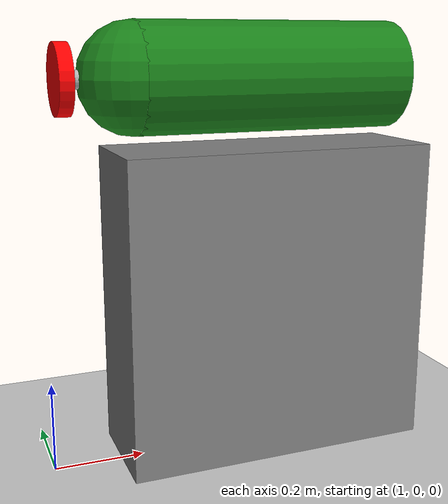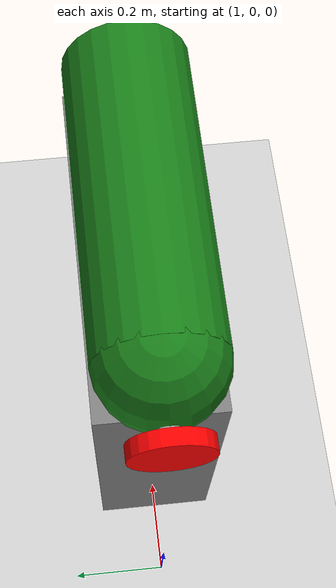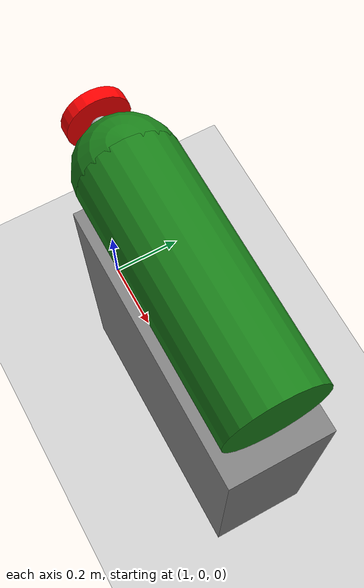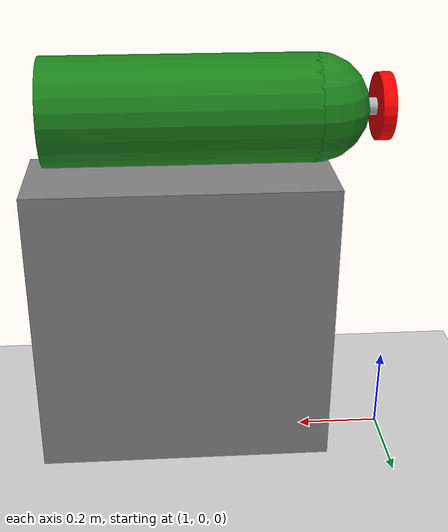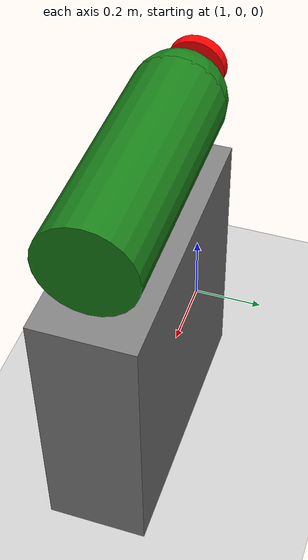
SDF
<?xml version="1.0" ?>

<sdf version="1.8">

  <world name="empty">

    <physics name="1ms" type="ignored">

      <max_step_size>0.001</max_step_size>

      <real_time_factor>1.0</real_time_factor>

    </physics>

    <plugin

      filename="gz-sim-physics-system"

      name="gz::sim::systems::Physics">

    </plugin>

    <plugin

      filename="gz-sim-user-commands-system"

      name="gz::sim::systems::UserCommands">

    </plugin>

    <plugin

      filename="gz-sim-scene-broadcaster-system"

      name="gz::sim::systems::SceneBroadcaster">

    </plugin>

    <light type="directional" name="sun">

      <cast_shadows>true</cast_shadows>

      <pose>0 0 10 0 0 0</pose>

      <diffuse>0.8 0.8 0.8 1</diffuse>

      <specular>0.2 0.2 0.2 1</specular>

      <attenuation>

        <range>1000</range>

        <constant>0.9</constant>

        <linear>0.01</linear>

        <quadratic>0.001</quadratic>

      </attenuation>

      <direction>-0.5 0.1 -0.9</direction>

    </light>

    <model name="ground_plane">

      <static>true</static>

      <link name="link">

        <collision name="collision">

          <geometry>

            <plane>

              <normal>0 0 1</normal>

              <size>100 100</size>

            </plane>

          </geometry>

        </collision>

        <visual name="visual">

          <geometry>

            <plane>

              <normal>0 0 1</normal>

              <size>100 100</size>

            </plane>

          </geometry>

          <material>

            <ambient>0.8 0.8 0.8 1</ambient>

            <diffuse>0.8 0.8 0.8 1</diffuse>

            <specular>0.8 0.8 0.8 1</specular>

          </material>

        </visual>

      </link>

    </model>

    <model name="arc_oxygen_tank">
      <static>true</static>
      <pose>1.5 0 0 0 0 -1.5708</pose>

      <link name="link">

        <collision name="support_collision">
          <pose>0 0 0.35 0 0 0</pose>
          <geometry>
            <box>
              <size>0.25 0.70 0.70</size>
            </box>
          </geometry>
        </collision>
        <visual name="support_visual">
          <pose>0 0 0.35 0 0 0</pose>
          <geometry>
            <box>
              <size>0.25 0.70 0.70</size>
            </box>
          </geometry>
          <material>
            <ambient>0.5 0.5 0.5 1</ambient>
            <diffuse>0.5 0.5 0.5 1</diffuse>
          </material>
        </visual>

        <collision name="tank_collision">
          <pose>0 0 0.85 0 1.5708 1.5708</pose>
          <geometry>
            <box>
              <size>0.24 0.60 0.24</size>
            </box>
          </geometry>
        </collision>
        <visual name="tank_visual">
          <pose>0 0 0.85 0 1.5708 1.5708</pose>
          <geometry>
            <cylinder>
              <radius>0.12</radius>
              <length>0.60</length>
            </cylinder>
          </geometry>
          <material>
            <ambient>0.05 0.35 0.05 1</ambient>
            <diffuse>0.1 0.5 0.1 1</diffuse>
          </material>
        </visual>

        <visual name="tank_dome_visual">
          <pose>0 -0.30 0.85 0 0 0</pose>
          <geometry>
            <sphere>
              <radius>0.12</radius>
            </sphere>
          </geometry>
          <material>
            <ambient>0.05 0.35 0.05 1</ambient>
            <diffuse>0.1 0.5 0.1 1</diffuse>
          </material>
        </visual>

        <visual name="valve_stem_visual">
          <pose>0 -0.40 0.85 0 1.5708 1.5708</pose>
          <geometry>
            <cylinder>
              <radius>0.02</radius>
              <length>0.10</length>
            </cylinder>
          </geometry>
          <material>
            <ambient>0.6 0.6 0.6 1</ambient>
            <diffuse>0.7 0.7 0.7 1</diffuse>
          </material>
        </visual>

        <collision name="valve_wheel_collision">
          <pose>0 -0.45 0.85 0 1.5708 1.5708</pose>
          <geometry>
            <box>
              <size>0.15 0.03 0.15</size>
            </box>
          </geometry>
        </collision>
        <visual name="valve_wheel_visual">
          <pose>0 -0.45 0.85 0 1.5708 1.5708</pose>
          <geometry>
            <cylinder>
              <radius>0.075</radius>
              <length>0.03</length>
            </cylinder>
          </geometry>
          <material>
            <ambient>1.0 0.0 0.0 1</ambient>
            <diffuse>1.0 0.0 0.0 1</diffuse>
            <specular>0.4 0.4 0.4 1</specular>
            <emissive>0.1 0.0 0.0 1</emissive>
          </material>
        </visual>

      </link>
    </model>

    <plugin filename="gz-sim-sensors-system" name="gz::sim::systems::Sensors">

      <render_engine>ogre2</render_engine>

    </plugin>

  </world>

</sdf>
